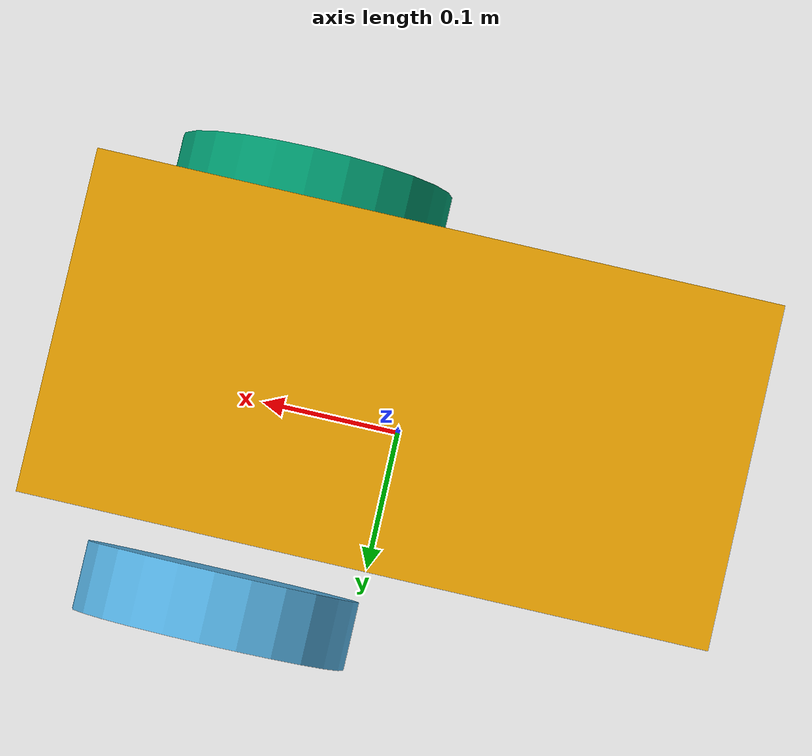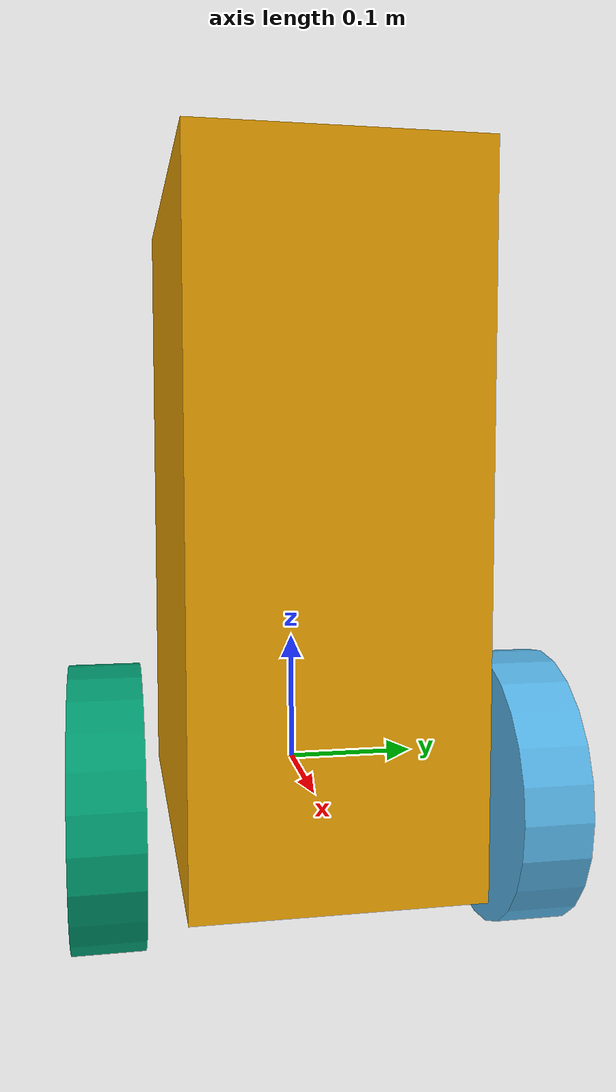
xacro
<?xml version='1.0'?>

<robot name="myrobot" xmlns:xacro="http://www.ros.org/wiki/xacro">

  <xacro:include filename="$(find a4bot)/src/a4bot_description/urdf/mybot.gazebo" />
  <xacro:include filename="$(find a4bot)/src/a4bot_description/urdf/materials.xacro" />
  <xacro:include filename="$(find a4bot)/src/a4bot_description/urdf/macros.xacro" />

  <link name='chassis'>
    <pose>0 0 0.1 0 0 0</pose>

    <inertial>
      <mass value="15.0"/>
      <origin xyz="-0.1 0.0 0.1" rpy=" 0 0 0"/>

			<inertia
          ixx="0.5" ixy="0" ixz="0"
          iyy="1.0" iyz="0"
          izz="0.1"
      />
    </inertial>

    <collision name='collision'>
      <origin xyz="0 0 0.2" rpy=" 0 0 0"/>
      <geometry>
        <box size=".4 .2 .5"/>
      </geometry>
    </collision>

    <visual name='chassis_visual'>
      <origin xyz="0 0 0.2" rpy=" 0 0 0"/>
      <geometry>
        <box size=".4 .2 .5"/>
      </geometry>
    </visual>

    <collision name='caster_collision'>
      <origin xyz="-0.15 0 -0.05" rpy=" 0 0 0"/>
      <geometry>
        <sphere radius="0.05"/>
      </geometry>
      <surface>
        <friction>
          <ode>
            <mu>0</mu>
            <mu2>0</mu2>
            <slip1>1</slip1>
            <slip2>1</slip2>
          </ode>
        </friction>
      </surface>
    </collision>

    <visual name='caster_visual'>
      <origin xyz="-0.15 0 -0.05" rpy=" 0 0 0"/>
      <geometry>
        <sphere radius="0.05"/>
      </geometry>
    </visual>
  </link>

  <link name="left_wheel">
    <!--origin xyz="0.1 0.13 0.1" rpy="0 1.5707 1.5707"/-->
    <collision name="collision">
      <origin xyz="0 0 0" rpy="0 1.5707 1.5707"/>
      <geometry>
        <cylinder radius="0.1" length="0.05"/>
      </geometry>
    </collision>
    <visual name="left_wheel_visual">
      <origin xyz="0 0 0" rpy="0 1.5707 1.5707"/>
      <geometry>
        <cylinder radius="0.1" length="0.05"/>
      </geometry>
    </visual>
    <inertial>
      <origin xyz="0 0 0" rpy="0 1.5707 1.5707"/>
      <mass value="5"/>
      <cylinder_inertia m="5" r="0.1" h="0.05"/>
      <inertia
        ixx="1.0" ixy="0.0" ixz="0.0"
        iyy="1.0" iyz="0.0"
        izz="1.0"/>
    </inertial>
  </link>

  <link name="right_wheel">
    <!--origin xyz="0.1 -0.13 0.1" rpy="0 1.5707 1.5707"/-->
    <collision name="collision">
      <origin xyz="0 0 0" rpy="0 1.5707 1.5707"/>
      <geometry>
        <cylinder radius="0.1" length="0.05"/>
      </geometry>
    </collision>
    <visual name="right_wheel_visual">
      <origin xyz="0 0 0" rpy="0 1.5707 1.5707"/>
      <geometry>
        <cylinder radius="0.1" length="0.05"/>
      </geometry>
    </visual>
    <inertial>
      <origin xyz="0 0 0" rpy="0 1.5707 1.5707"/>
      <mass value="5"/>
      <cylinder_inertia m="5" r="0.1" h="0.05"/>
      <inertia
        ixx="1.0" ixy="0.0" ixz="0.0"
        iyy="1.0" iyz="0.0"
        izz="1.0"/>
    </inertial>
  </link>

  <joint type="continuous" name="left_wheel_hinge">
    <origin xyz="0.1 0.15 0" rpy="0 0 0"/>
    <child link="left_wheel"/>
    <parent link="chassis"/>
    <axis xyz="0 1 0" rpy="0 0 0"/>
    <limit effort="100" velocity="100"/>
    <joint_properties damping="0.0" friction="0.0"/>
  </joint>

  <joint type="continuous" name="right_wheel_hinge">
    <origin xyz="0.1 -0.15 0" rpy="0 0 0"/>
    <child link="right_wheel"/>
    <parent link="chassis"/>
    <axis xyz="0 1 0" rpy="0 0 0"/>
    <limit effort="100" velocity="100"/>
    <joint_properties damping="0.0" friction="0.0"/>
  </joint>

</robot>
